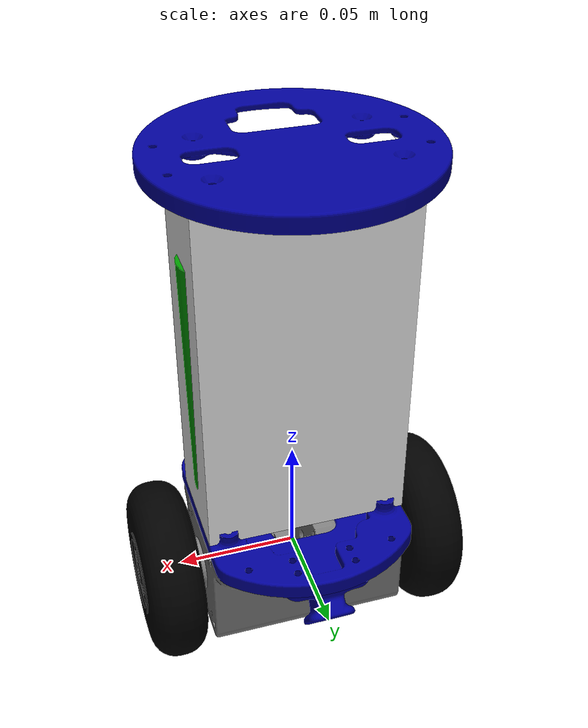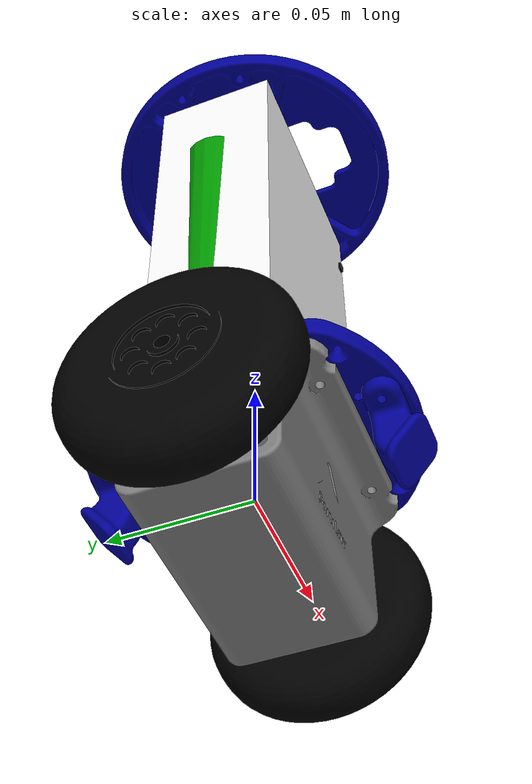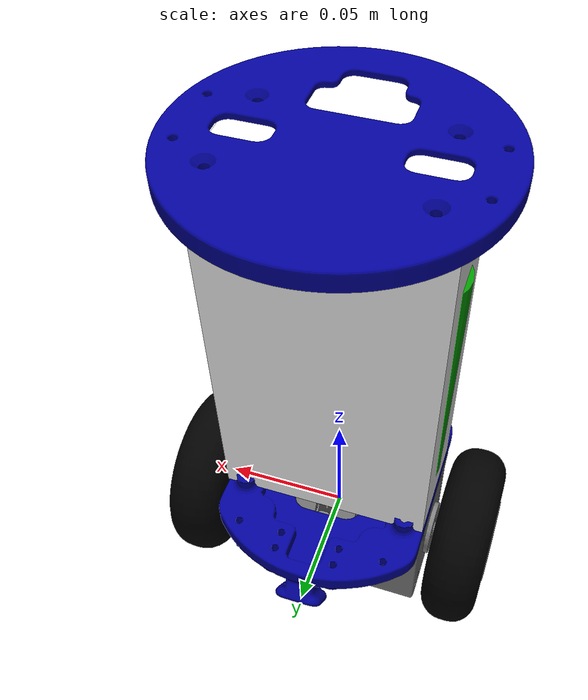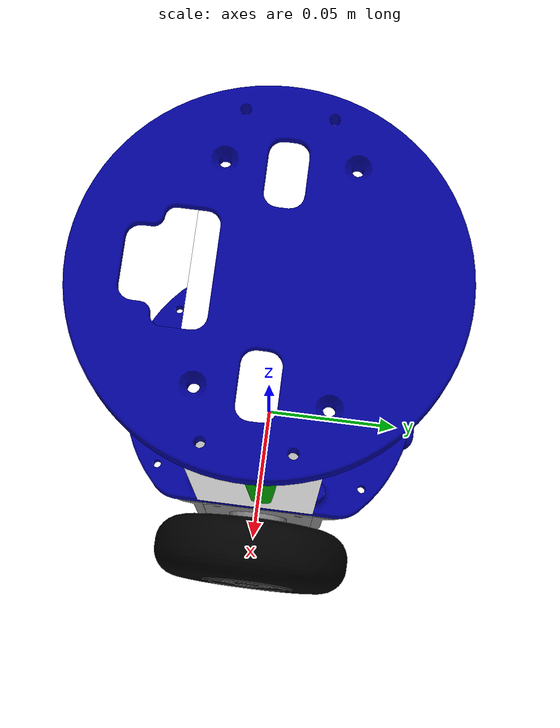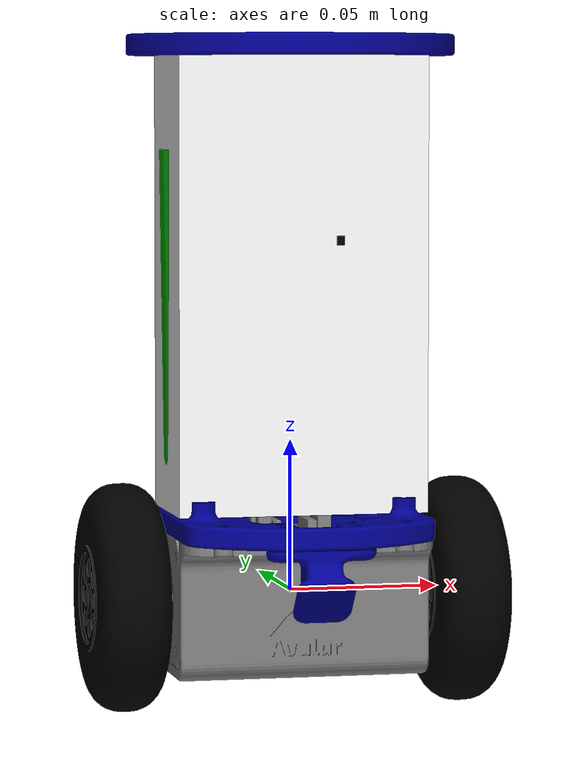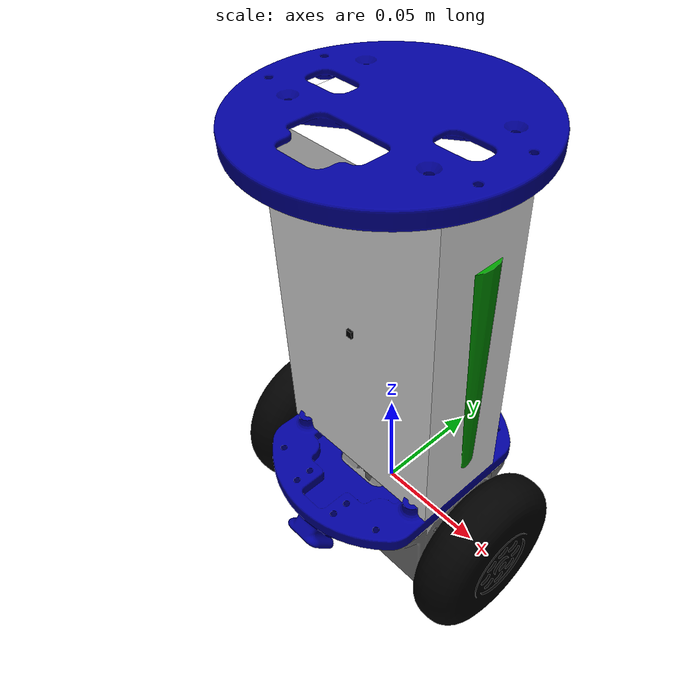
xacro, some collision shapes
<?xml version="1.0"?> <!-- Specify this is an xml file using version 1.0-->

<robot xmlns:xacro="https://www.ros.org/wiki/xacro" name="balance_robot">

   <!-- URDF custom parameters -->
   <xacro:arg name="use_meshes" default="true"/> <!-- Put on meshes -->
   <xacro:arg name='use_footprint' default="false"/> <!-- Use footpriny link -->
   <xacro:arg name="use_ros2_control" default="false"/> <!-- Use ros2_control -->
   <xacro:arg name="use_gazebo_colors" default="false"/> <!-- Use Gazebo collors -->

   <!-- This file includes the core of the robot -->
   <xacro:include filename="balance_robot_core.xacro"/>

   <!-- Simulating a IMU sensor -->
   <xacro:include filename="IMU_sensor.xacro"/>

   <!-- Use ros2_control -->
   <xacro:if value="$(arg use_ros2_control)">
      <xacro:include filename="ros2_control.xacro"/>
   </xacro:if>

   <!-- Use build in Gazebo control -->
   <xacro:unless value="$(arg use_ros2_control)">
      <xacro:include filename="gazebo_control.xacro"/>
   </xacro:unless>

</robot>

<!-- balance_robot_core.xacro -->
<!-- Specify this is an xml file using version 1.0-->

<!-- simplistic URDF file for a balance robot -->

<!-- INFO: in RVIZ2
    red is   x-axis
    green is y-axis
    blue is  z-axis
-->

<!-- Specify this is also an xacro extension (macro xml) -->
<robot xmlns:xacro="https://www.ros.org/wiki/xacro">

    <!-- Include xacro files -->
    <xacro:include filename="inertial_macros.xacro"/>

    <!-- Material color properties -->
    <material name="gray">
        <color rgba="0.5 0.5 0.5 1.0"/>
    </material>

    <material name="red">
        <color rgba="0.6 0.0 0.0 1.0"/>
    </material>

    <material name="green">
        <color rgba="0.0 0.6 0.0 1.0"/>
    </material>

    <material name="blue">
        <color rgba="0.0 0.0 0.6 1.0"/>
    </material>

    <material name="white">
        <color rgba="1.0 1.0 1.0 1.0"/>
    </material>

    <material name="black">
        <color rgba="0.0 0.0 0.0 1.0"/>
    </material>

    <!-- ****************** ROBOT BASE FOOTPRINT ***************************  -->
    <!-- Links of the robot they describe the (objects/parts) of the robot -->
    <!-- Link that is on the ground in the middle of the robot (useful for navigation purposes -->
    <xacro:if value="$(arg use_footprint)">
        <link name="base_footprint"> <!-- Conventional name for this virtual reference link -->
            <!-- Empty virtual link-->
        </link>
    </xacro:if>
    <!-- ********************** ROBOT BASE *********************************  -->
    <!-- Base link stepper motors with housing -->
    <!-- The dimensions are defined first as parameters every dimension is in meters -->
    <xacro:property name="HSB" value="0.083"/> <!-- HSB= Height Stepper Base (Height = x-axis) -->
    <xacro:property name="WSB" value="0.050"/> <!-- WSB= Width Stepper Base (Width = y-axis) -->
    <xacro:property name="LSB" value="0.046"/> <!-- LSB= Length Stepper Base (Length = z-axis) -->
    <xacro:property name="MSB" value="0.622"/> <!-- MSB= Mass Stepper Base -->

    <link name="base_link"> <!-- Needs to be called base_link (as a first real link in stead of StepperBase) -->
        <visual>
            <origin xyz="0.0 0.0 0.0" rpy="0.0 0.0 0.0"/>
            <geometry>
                <xacro:if value="$(arg use_meshes)">
                    <mesh filename="package://balance_robot/meshes/StepperBaseV1Color.dae"/>
                </xacro:if>
                <xacro:unless value="$(arg use_meshes)">
                    <box size="${HSB} ${WSB} ${LSB}"/>
                </xacro:unless>
            </geometry>
            <material name="gray"/>
        </visual>
        <collision>
            <origin xyz="0.0 0.0 0.0" rpy="0.0 0.0 0.0"/>
            <geometry>
                <box size="${HSB} ${WSB} ${LSB}"/>
            </geometry>
        </collision>
        <xacro:inertial_box mass="${MSB}" x="${HSB}" y="${WSB}" z="${LSB}">
            <origin xyz="0.0 0.0 0.0" rpy="0.0 0.0 0.0"/>
        </xacro:inertial_box>
    </link>

    <!-- Base Plate of the robot where everthing gets mounted this geometry is approximated as a box -->
    <!-- The dimensions are defined first as parameters -->
    <xacro:property name="HBP" value="0.083"/> <!-- HBP= Height Base Plate (Height = x-axis) -->
    <xacro:property name="WBP" value="0.108"/> <!-- WBP= Width Base Plate (Width = y-axis) -->
    <xacro:property name="LBP" value="0.007"/> <!-- LBP= Length Base Plate (Length = z-axis) -->
    <xacro:property name="MBP" value="0.050"/> <!-- MBP= Mass Base Plate -->

    <link name="basePlate_link">
        <visual>
            <origin xyz="0.0 0.0 0.0" rpy="0.0 0.0 0.0"/>
            <geometry>
                <xacro:if value="$(arg use_meshes)">
                    <mesh filename="package://balance_robot/meshes/BasePlate.dae"/>
                </xacro:if>
                <xacro:unless value="$(arg use_meshes)">
                    <box size="${HBP} ${WBP} ${LBP}"/>
                </xacro:unless>
            </geometry>
            <material name="blue"/>
        </visual>
        <collision>
            <origin xyz="0.0 0.0 0.0" rpy="0.0 0.0 0.0"/>
            <geometry>
                <box size="${HBP} ${WBP} ${LBP}"/>
            </geometry>
        </collision>
        <xacro:inertial_box mass="${MBP}" x="${HBP}" y="${WBP}" z="${LBP}">
            <origin xyz="0.0 0.0 0.0" rpy="0.0 0.0 0.0"/>
        </xacro:inertial_box>
    </link>

    <!-- Front Tip Stop of the robot (stopping the robot from tipping over to the front) -->
    <!-- The dimensions are defined first as parameters -->
    <!-- We heavily simplify this stop as a box -->
    <xacro:property name="HTS" value="0.020"/> <!-- HTS= Height Tip Stop (Height = x-axis) -->
    <xacro:property name="WTS" value="0.020"/> <!-- WTS= Width Tip Stop (Width = y-axis) -->
    <xacro:property name="LTS" value="0.020"/> <!-- LTS= Length Tip Stop (Length = z-axis) -->
    <xacro:property name="MTS" value="0.020"/> <!-- MTS= Mass Tip Stop -->

    <link name="frontTipStop_link">
        <visual>
            <origin xyz="0.0 0.005 -0.004" rpy="${pi + (0.03*pi)} 0.0 ${pi}"/> <!-- turned 50 degrees on x-axis -->
            <geometry>
                <xacro:if value="$(arg use_meshes)">
                    <mesh filename="package://balance_robot/meshes/TipOverStopColor.dae"/>
                </xacro:if>
                <xacro:unless value="$(arg use_meshes)">
                    <box size="${HTS} ${WTS} ${LTS}"/>
                </xacro:unless>
            </geometry>
            <material name="blue"/>
        </visual>
        <collision>
            <origin xyz="0.0 0.0065 0.0" rpy="0.0 0.0 0.0"/>
            <geometry>
                <box size="${HTS} ${WTS} ${LTS}"/>
            </geometry>
        </collision>
        <xacro:inertial_box mass="${MTS}" x="${HTS}" y="${WTS}" z="${LTS}">
            <origin xyz="0.0 0.0065 0.0" rpy="-${(pi*0.28)} 0.0 0.0"/>
        </xacro:inertial_box>
    </link>

    <!-- Back Tip Stop of the robot (stopping the robot from tipping over to the back) -->
    <link name="backTipStop_link">
        <visual>
            <origin xyz="0.0 -0.005 -0.004" rpy="${pi + (0.03*pi)} 0.0 0.0"/> <!-- turned 50 degrees on x-axis -->
            <geometry>
                <xacro:if value="$(arg use_meshes)">
                    <mesh filename="package://balance_robot/meshes/TipOverStopColor.dae"/>
                </xacro:if>
                <xacro:unless value="$(arg use_meshes)">
                    <box size="${HTS} ${WTS} ${LTS}"/>
                </xacro:unless>
            </geometry>
            <material name="blue"/>
        </visual>
        <collision>
            <origin xyz="0.0 -0.0065 0.0" rpy="0.0 0.0 0.0"/>
            <geometry>
                <box size="${HTS} ${WTS} ${LTS}"/>
            </geometry>
        </collision>
        <xacro:inertial_box mass="${MTS}" x="${HTS}" y="${WTS}" z="${LTS}">
            <origin xyz="0.0 -0.0065 0.0" rpy="${(pi*0.28)-(1.5*pi)} 0.0 0.0"/>
        </xacro:inertial_box>
    </link>

    <!-- Main body link where battery pack and electronics are mounted -->
    <!-- The dimensions are defined first as parameters -->
    <xacro:property name="HBL" value="0.083"/> <!-- HBL= Height Body Link (Height = x-axis) -->
    <xacro:property name="WBL" value="0.043"/> <!-- WBL= Width Body Link (Width = y-axis) -->
    <xacro:property name="LBL" value="0.150"/> <!-- LBL= Length Body Link (Length = z-axis) -->
    <xacro:property name="MBL" value="0.127"/> <!-- MBL= Mass Body Link -->

    <link name="body_link">
        <visual>
            <origin xyz="0.00045 0.0 -0.0135" rpy="0.0 0.0 0.0"/>
            <geometry>
                <xacro:if value="$(arg use_meshes)">
                    <mesh filename="package://balance_robot/meshes/MainBodyV1Color.dae"/>
                </xacro:if>
                <xacro:unless value="$(arg use_meshes)">
                    <box size="${HBL} ${WBL} ${LBL}"/>
                </xacro:unless>
            </geometry>
            <material name="white"/>
        </visual>
        <collision>
            <origin xyz="0.0 0.0 0.0" rpy="0.0 0.0 0.0"/>
            <geometry>
                <box size="${HBL} ${WBL} ${LBL}"/>
            </geometry>
        </collision>
        <xacro:inertial_box mass="${MBL}" x="${HBL}" y="${WBL}" z="${LBL}">
            <origin xyz="0.0 0.0 0.0" rpy="0.0 0.0 0.0"/>
        </xacro:inertial_box>
    </link>

    <!-- IMU link that is where the IMU is located -->
    <!-- The dimensions are defined first as parameters -->
    <xacro:property name="HIL" value="0.0025"/> <!-- HIL= Height IMU Link (Height = x-axis) -->
    <xacro:property name="WIL" value="0.001"/> <!-- WIL= Width IMU Link (Width = y-axis) -->
    <xacro:property name="LIL" value="0.003"/> <!-- LIL= Length IMU Link (Length = z-axis) -->

    <link name="imu_link">
        <visual>
            <origin xyz="0.0 0.0 0.0" rpy="0.0 0.0 0.0"/>
            <geometry>
                <box size="${HIL} ${WIL} ${LIL}"/>
            </geometry>
            <material name="black"/>
        </visual>
    </link>

    <!-- Battery pack link, this is taken as a separate link because the inertia and mass have -->
    <!-- a significant influence on the dynamic behaviour -->
    <!-- The dimensions are defined first as parameters -->
    <xacro:property name="HBPL" value="0.087"/> <!-- HBPL= Height Battery Pack Link (Height = x-axis) -->
    <xacro:property name="WBPL" value="0.026"/> <!-- WBPL= Width Battery Pack Link (Width = y-axis) -->
    <xacro:property name="LBPL" value="0.0936"/> <!-- LBPL= Length Battery Pack Link (Length = z-axis) -->
    <xacro:property name="MBPL" value="0.265"/> <!-- MBPL= Mass Battery Pack Link -->

    <link name="batteryPack_link">
        <visual>
            <origin xyz="0.0 -0.0075 -0.005" rpy="0.0 0.0 0.0"/>
            <geometry>
                <xacro:if value="$(arg use_meshes)">
                    <mesh filename="package://balance_robot/meshes/PowerBankColor.dae"/>
                </xacro:if>
                <xacro:unless value="$(arg use_meshes)">
                    <box size="${HBPL} ${WBPL} ${LBPL}"/>
                </xacro:unless>
            </geometry>
            <material name="green"/>
        </visual>
        <collision>
            <origin xyz="0.0 0.0 -0.005" rpy="0.0 0.0 0.0"/>
            <geometry>
                <box size="${HBPL} ${WBPL} ${LBPL}"/>
            </geometry>
        </collision>
        <xacro:inertial_box mass="${MBPL}" x="${HBPL}" y="${WBPL}" z="${LBPL}">
            <origin xyz="0.0 0.0 -0.005" rpy="0.0 0.0 0.0"/>
        </xacro:inertial_box>
    </link>

    <!-- Top Plate link the platform on top of the robot -->
    <!-- The dimensions are defined first as parameters -->
    <xacro:property name="RTP" value="0.054"/> <!-- RPB= Radius Top Plate (Radius = x,y-axis) -->
    <xacro:property name="LTP" value="0.007"/> <!-- LPB= Length Top Plate (Length = z-axis) -->
    <xacro:property name="MTP" value="0.059"/> <!-- MTP= Mass Top Plate -->

    <link name="topPlate_link">
        <visual>
            <origin xyz="0.0001 -0.0015 0.0" rpy="0.0 0.0 0.0"/>
            <geometry>
                <xacro:if value="$(arg use_meshes)">
                    <mesh filename="package://balance_robot/meshes/TopPlateColor.dae"/>
                </xacro:if>
                <xacro:unless value="$(arg use_meshes)">
                    <cylinder radius="${RTP}" length="${LTP}"/>
                </xacro:unless>
            </geometry>
            <material name="blue"/>
        </visual>
        <collision>
            <origin xyz="0.0 0.0 0.0" rpy="0.0 0.0 0.0"/>
            <geometry>
                <cylinder radius="${RTP}" length="${LTP}"/>
            </geometry>
        </collision>
        <xacro:inertial_cylinder mass="${MTP}" length="${LTP}" radius="${RTP}">
            <origin xyz="0.0 0.0 0.0" rpy="0.0 0.0 0.0"/>
        </xacro:inertial_cylinder>
    </link>

    <!-- *********************** DRIVE WHEELS ******************************  -->
    <!-- Link that represents the right wheel-->
    <!-- The dimensions are defined first as parameters -->
    <xacro:property name="RW" value="0.0375"/> <!-- RW= Radius Wheel (Radius = x,y-axis) -->
    <xacro:property name="LW" value="0.024"/> <!-- LW= Length Wheel (Length = z-axis) -->
    <xacro:property name="MW" value="0.040"/> <!-- MW= Mass Wheel -->

    <link name="right_wheel_link">
        <visual>
            <xacro:if value="$(arg use_meshes)">
                <origin xyz="0.0 0.0 0.0" rpy="0.0 ${pi/2} 0.0"/>
            </xacro:if>
            <xacro:unless value="$(arg use_meshes)">
                <origin xyz="0.0 0.0 0.0" rpy="0.0 0.0 0.0"/>
            </xacro:unless>
            <geometry>
                <xacro:if value="$(arg use_meshes)">
                    <mesh filename="package://balance_robot/meshes/WheelColor.dae"/>
                </xacro:if>
                <xacro:unless value="$(arg use_meshes)">
                    <cylinder radius="${RW}" length="${LW}"/>
                </xacro:unless>
            </geometry>
            <material name="black"/>
        </visual>
        <collision>
            <origin xyz="0.0 0.0 0.0" rpy="0.0 0.0 0.0"/>
            <geometry>
                <cylinder radius="${RW}" length="${LW}"/>
            </geometry>
        </collision>
        <xacro:inertial_cylinder mass="${MW}" length="${LW}" radius="${RW}">
            <origin xyz="0.0 0.0 0.0" rpy="0.0 0.0 0.0"/>
        </xacro:inertial_cylinder>
    </link>

    <!-- Link that represents the left wheel -->
    <link name="left_wheel_link">
        <visual>
            <xacro:if value="$(arg use_meshes)">
                <origin xyz="0.0 0.0 0.0" rpy="0.0 ${pi/2} 0.0"/>
            </xacro:if>
            <xacro:unless value="$(arg use_meshes)">
                <origin xyz="0.0 0.0 0.0" rpy="0.0 0.0 0.0"/>
            </xacro:unless>
            <geometry>
                <xacro:if value="$(arg use_meshes)">
                    <mesh filename="package://balance_robot/meshes/WheelColor.dae"/>
                </xacro:if>
                <xacro:unless value="$(arg use_meshes)">
                    <cylinder radius="${RW}" length="${LW}"/>
                </xacro:unless>
            </geometry>
            <material name="black"/>
        </visual>
        <collision>
            <origin xyz="0.0 0.0 0.0" rpy="0.0 0.0 0.0"/>
            <geometry>
                <cylinder radius="${RW}" length="${LW}"/>
            </geometry>
        </collision>
        <xacro:inertial_cylinder mass="${MW}" length="${LW}" radius="${RW}">
            <origin xyz="0.0 0.0 0.0" rpy="0.0 0.0 0.0"/>
        </xacro:inertial_cylinder>
    </link>

    <xacro:property name="Z_OFFZ" value="0.002"/>

    <!-- Joints of the robot they attach the links together to make a TF tree -->
    <!-- Joint that connects the virtual base_footprint and base_link -->
    <!-- This link makes sure the origin is on the ground in the middle of the robot-->
    <xacro:if value="$(arg use_footprint)">
        <joint name="base_footprint_joint" type="fixed">
            <origin xyz="0.0 0.0 ${RW}" rpy="0.0 0.0 0.0"/> <!-- Offset is the radius of a (right) wheel -->
            <parent link="base_footprint"/>
            <child link="base_link"/>
        </joint>
    </xacro:if>

    <!-- Joint that connects base_link with baseplate -->
    <joint name="base_plate_joint" type="fixed">
        <origin xyz="0.0 0.0 ${(LSB/2) + (LBP/2)-Z_OFFZ}" rpy="0.0 0.0 0.0"/> <!-- half-LSB+half-LBP (0.023+0.0035)=0.0265-->
        <parent link="base_link"/>
        <child link="basePlate_link"/>
    </joint>

    <!-- Joint that connects the frontTipStop with the baseplate -->
    <joint name="plate_ftip_joint" type="fixed">
        <origin xyz="0.0 -${(WBP/2)} -0.015" rpy="${(pi*0.25)} 0.0 0.0"/>
        <parent link="basePlate_link"/>
        <child link="frontTipStop_link"/>
    </joint>

    <!-- Joint that connects the backTipStop with the baseplate -->
    <joint name="plate_btip_joint" type="fixed">
        <origin xyz="0.0 ${(WBP/2)} -0.015" rpy="-${(pi*0.25)} 0.0 0.0"/>
        <parent link="basePlate_link"/>
        <child link="backTipStop_link"/>
    </joint>

    <!-- Joint that links the main body with respect to the base_link -->
    <joint name="base_body_joint" type="fixed">
        <origin xyz="0.0 0.0 ${(LSB/2) + LBP + (LBL/2)-0.001-Z_OFFZ}" rpy="0.0 0.0 0.0"/> <!-- half-LSB+LBP+half-LBL (0.023+0.007+0.085)=0.115 -->
        <parent link="base_link"/>
        <child link="body_link"/>
    </joint>

    <!-- Joint that links the IMU sensor to the main body -->
    <joint name="body_imu_joint" type="fixed">
        <origin xyz="0.010 -0.03 0.015" rpy="0.0 0.0 0.0"/>
        <parent link="body_link"/>
        <child link="imu_link"/>
    </joint>

    <!-- Joint that links the battery pack to the main body -->
    <joint name="body_battery_joint" type="fixed">
        <origin xyz="0.0 0.002 -0.015" rpy="0.0 0.0 0.0"/> <!-- shift battery pack 2mm to the back 15mm down-->
        <parent link="body_link"/>
        <child link="batteryPack_link"/>
    </joint>

    <!-- Joint that links the top plate with respect to the base_link -->
    <joint name="base_topPlate_joint" type="fixed">
        <origin xyz="0.0 0.0 ${(LSB/2) + LBP + LBL + (LTP/2)-0.0035}" rpy="0.0 0.0 0.0"/> <!-- Half-LSB+LBP+LBL+half-LTP (0.023+0.007+0.17+0.0035=0.2035)-->
        <parent link="base_link"/>
        <child link="topPlate_link"/>
    </joint>

    <!-- Joint that links the right wheel to the base_link as a continous rotating wheel -->
    <!-- Outside dimensions of wheels measure 137,50mm of the real robot -->
    <xacro:property name="ODW" value="0.1375"/> <!-- ODW= Outside dimension wheels-->

    <joint name="right_wheel_joint" type="continuous">
        <origin xyz="${(ODW/2)-(LW/2)} 0.0 -0.001" rpy="0.0 ${pi/2} 0.0"/>
        <parent link="base_link"/>
        <child link="right_wheel_link"/>
        <axis xyz="0.0 0.0 1.0"/> <!-- continuous rotation is around the z-axis -->
    </joint>

    <!-- Joint that links the left wheel to the base_link as a continous rotating wheel -->
    <joint name="left_wheel_joint" type="continuous">
        <origin xyz="-${(ODW/2)-(LW/2)} 0.0 -0.001" rpy="0.0 -${pi/2} 0.0"/>
        <parent link="base_link"/>
        <child link="left_wheel_link"/>
        <axis xyz="0.0 0.0 -1.0"/> <!-- continuous rotation is around the z-axis -->
    </joint>

    <!-- Gazebo specific code ... -->
    <!-- Set the Gazebo colors -->
    <xacro:if value="$(arg use_gazebo_colors)">
        <gazebo reference="base_link">
            <material>Gazebo/Gray</material>
        </gazebo>
        <gazebo reference="basePlate_link">
            <material>Gazebo/Blue</material>
        </gazebo>
    </xacro:if>
    <!-- Make the Tip Over Stops have some amount of friction with respect to the ground -->
    <gazebo reference="frontTipStop_link">
        <xacro:if value="$(arg use_gazebo_colors)">
            <material>Gazebo/Blue</material>
        </xacro:if>
        <mu1 value="0.5"/>
        <mu2 value="0.5"/>
    </gazebo>
    <gazebo reference="backTipStop_link">
        <xacro:if value="$(arg use_gazebo_colors)">
            <material>Gazebo/Blue</material>
        </xacro:if>
        <mu1 value="0.5"/>
        <mu2 value="0.5"/>
    </gazebo>
    <xacro:if value="$(arg use_gazebo_colors)">
        <gazebo reference="body_link">
            <material>Gazebo/White</material>
        </gazebo>
        <gazebo reference="batteryPack_link">
            <material>Gazebo/Gray</material>
        </gazebo>
        <gazebo reference="topPlate_link">
            <material>Gazebo/Blue</material>
        </gazebo>
        <gazebo reference="right_wheel_link">
            <material>Gazebo/Black</material>
        </gazebo>
        <gazebo reference="left_wheel_link">
            <material>Gazebo/Black</material>
        </gazebo>
    </xacro:if>

    <!-- Gazebo requires the use of plugins to interact with other systems such as ROS2 -->
    <!-- This plugin will publish the joint_states for the selected joints
        (Which robot_state_publisher can use to broadcast the appropiate TF -->
    <gazebo>
        <plugin name="gazebo_ros_joint_state_publisher" filename="libgazebo_ros_joint_state_publisher.so">
            <update_rate>20</update_rate> <!-- Update rate is equal to 20 Hz-->
            <joint_name>right_wheel_joint</joint_name>
            <joint_name>left_wheel_joint</joint_name>
        </plugin>
    </gazebo>

</robot>
